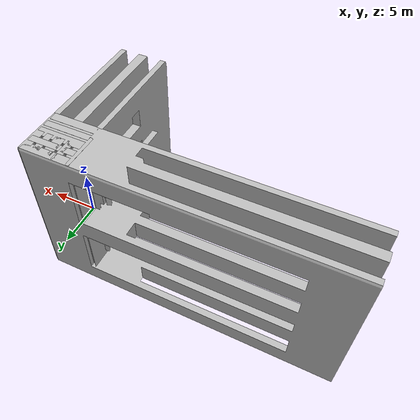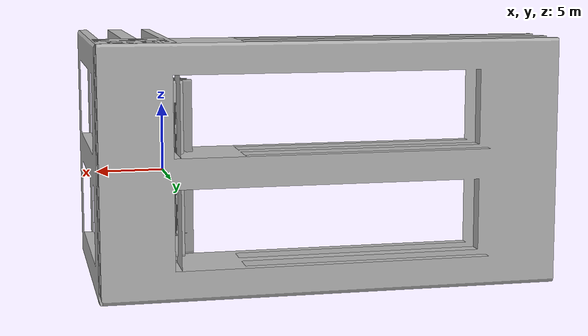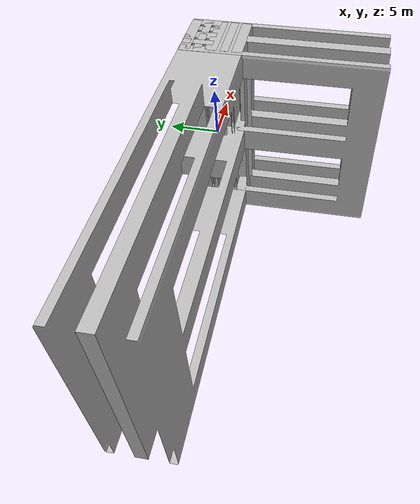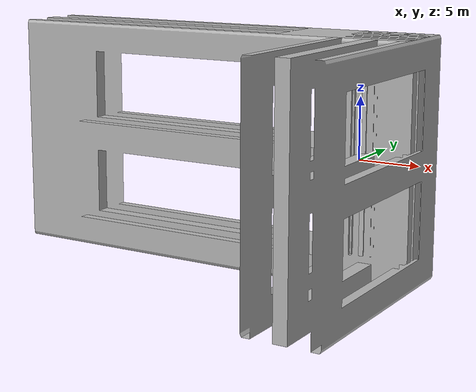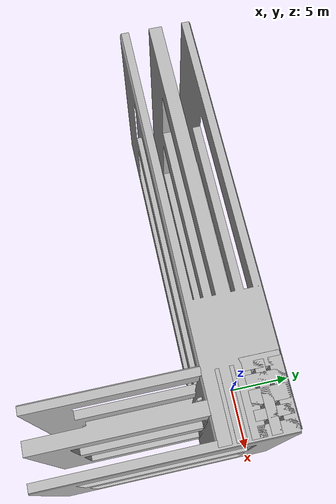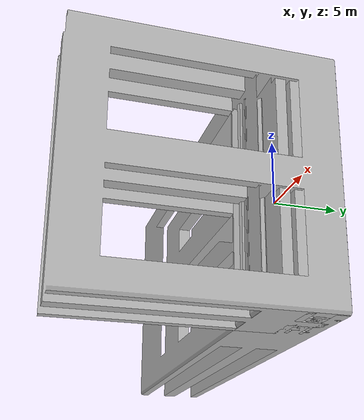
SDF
<sdf version='1.4'>
	<model name='2pallets+stepping_blocks'>
		<static>1</static>
		<link name='pallet_1'>
			<pose>-0.5 0 0.072 0 0 -1.5708</pose>
			<collision name='collision'>
				<geometry>
					<mesh>
						<uri>model://pallet_benchmark/mesh/pallet.dae</uri>
						<scale>0.787 24.75 1.6197</scale>
					</mesh>
				</geometry>
				<surface>
					<bounce>
						<restitution_coefficient>0.01</restitution_coefficient>
						<threshold>5</threshold>
					</bounce>
					<friction>
						<ode>
							<mu>10</mu>
							<mu2>10</mu2>
						</ode>
					</friction>
					<contact>
						<ode>
							<soft_cfm>0.001</soft_cfm>
							<kp>100000</kp>
							<kd>1000</kd>
						</ode>
					</contact>
				</surface>
				<max_contacts>10</max_contacts>
			</collision>
			<visual name='visual'>
				<geometry>
					<mesh>
						<uri>model://pallet_benchmark/mesh/pallet.dae</uri>
						<scale>0.787 24.75 1.6197</scale>
					</mesh>
				</geometry>
			</visual>
		</link>
		<link name='pallet_2'>
			<pose>2.1 0 0.072 0 -0 0</pose>
			<collision name='collision'>
				<geometry>
					<mesh>
						<uri>model://pallet_benchmark/mesh/pallet.dae</uri>
						<scale>0.787 13.50 1.6197</scale>
					</mesh>
				</geometry>
				<surface>
					<bounce>
						<restitution_coefficient>0.01</restitution_coefficient>
						<threshold>5</threshold>
					</bounce>
					<friction>
						<ode>
							<mu>10</mu>
							<mu2>10</mu2>
						</ode>
					</friction>
					<contact>
						<ode>
							<soft_cfm>0.001</soft_cfm>
							<kp>100000</kp>
							<kd>1000</kd>
						</ode>
					</contact>
				</surface>
				<max_contacts>10</max_contacts>
			</collision>
			<visual name='visual'>
				<geometry>
					<mesh>
						<uri>model://pallet_benchmark/mesh/pallet.dae</uri>
						<scale>0.787 13.50 1.6197</scale>
					</mesh>
				</geometry>
			</visual>
		</link>
		<link name='block_1'>
			<pose>0.785 -0.275 0.05 0 0 -1.2</pose>
			<collision name='collision'>
				<geometry>
					<mesh>
						<uri>model://blockwood_benchmark/mesh/pallet.dae</uri>
						<scale>0.246 2.46 1.1249</scale>
					</mesh>
				</geometry>
				<surface>
					<bounce>
						<restitution_coefficient>0.01</restitution_coefficient>
						<threshold>5</threshold>
					</bounce>
					<friction>
						<ode>
							<mu>10</mu>
							<mu2>10</mu2>
						</ode>
					</friction>
					<contact>
						<ode>
							<soft_cfm>0.001</soft_cfm>
							<kp>100000</kp>
							<kd>1000</kd>
						</ode>
					</contact>
				</surface>
				<max_contacts>10</max_contacts>
			</collision>
			<visual name='visual'>
				<geometry>
					<mesh>
						<uri>model://blockwood_benchmark/mesh/pallet.dae</uri>
						<scale>0.246 2.46 1.1249</scale>
					</mesh>
				</geometry>
			</visual>
		</link>
		<link name='block_2'>
			<pose>1.085 0.145 0.05 0 0 0.2</pose>
			<collision name='collision'>
				<geometry>
					<mesh>
						<uri>model://blockwood_benchmark/mesh/pallet.dae</uri>
						<scale>0.246 2.46 1.1249</scale>
					</mesh>
				</geometry>
				<surface>
					<bounce>
						<restitution_coefficient>0.01</restitution_coefficient>
						<threshold>5</threshold>
					</bounce>
					<friction>
						<ode>
							<mu>10</mu>
							<mu2>10</mu2>
						</ode>
					</friction>
					<contact>
						<ode>
							<soft_cfm>0.001</soft_cfm>
							<kp>100000</kp>
							<kd>1000</kd>
						</ode>
					</contact>
				</surface>
				<max_contacts>10</max_contacts>
			</collision>
			<visual name='visual'>
				<geometry>
					<mesh>
						<uri>model://blockwood_benchmark/mesh/pallet.dae</uri>
						<scale>0.246 2.46 1.1249</scale>
					</mesh>
				</geometry>
			</visual>
		</link>
		<link name='block_3'>
			<pose>1.25 -0.405 0.05 0 0 0.2</pose>
			<collision name='collision'>
				<geometry>
					<mesh>
						<uri>model://blockwood_benchmark/mesh/pallet.dae</uri>
						<scale>0.246 2.46 1.1249</scale>
					</mesh>
				</geometry>
				<surface>
					<bounce>
						<restitution_coefficient>0.01</restitution_coefficient>
						<threshold>5</threshold>
					</bounce>
					<friction>
						<ode>
							<mu>10</mu>
							<mu2>10</mu2>
						</ode>
					</friction>
					<contact>
						<ode>
							<soft_cfm>0.001</soft_cfm>
							<kp>100000</kp>
							<kd>1000</kd>
						</ode>
					</contact>
				</surface>
				<max_contacts>10</max_contacts>
			</collision>
			<visual name='visual'>
				<geometry>
					<mesh>
						<uri>model://blockwood_benchmark/mesh/pallet.dae</uri>
						<scale>0.246 2.46 1.1249</scale>
					</mesh>
				</geometry>
			</visual>
		</link>
		<link name='block_4'>
			<pose>1.455 -0.325 0.05 0 0 -1.5708</pose>
			<collision name='collision'>
				<geometry>
					<mesh>
						<uri>model://blockwood_benchmark/mesh/pallet.dae</uri>
						<scale>0.246 2.46 0.787</scale>
					</mesh>
				</geometry>
				<surface>
					<bounce>
						<restitution_coefficient>0.01</restitution_coefficient>
						<threshold>5</threshold>
					</bounce>
					<friction>
						<ode>
							<mu>10</mu>
							<mu2>10</mu2>
						</ode>
					</friction>
					<contact>
						<ode>
							<soft_cfm>0.001</soft_cfm>
							<kp>100000</kp>
							<kd>1000</kd>
						</ode>
					</contact>
				</surface>
				<max_contacts>10</max_contacts>
			</collision>
			<visual name='visual'>
				<geometry>
					<mesh>
						<uri>model://blockwood_benchmark/mesh/pallet.dae</uri>
						<scale>0.246 2.46 1.1249</scale>
					</mesh>
				</geometry>
			</visual>
		</link>
		<link name='block_5'>
			<pose>0.775 0.275 0.05 0 0 1</pose>
			<collision name='collision'>
				<geometry>
					<mesh>
						<uri>model://blockwood_benchmark/mesh/pallet.dae</uri>
						<scale>0.246 2.46 1.1249</scale>
					</mesh>
				</geometry>
				<surface>
					<bounce>
						<restitution_coefficient>0.01</restitution_coefficient>
						<threshold>5</threshold>
					</bounce>
					<friction>
						<ode>
							<mu>10</mu>
							<mu2>10</mu2>
						</ode>
					</friction>
					<contact>
						<ode>
							<soft_cfm>0.001</soft_cfm>
							<kp>100000</kp>
							<kd>1000</kd>
						</ode>
					</contact>
				</surface>
				<max_contacts>10</max_contacts>
			</collision>
			<visual name='visual'>
				<geometry>
					<mesh>
						<uri>model://blockwood_benchmark/mesh/pallet.dae</uri>
						<scale>0.246 2.46 1.1249</scale>
					</mesh>
				</geometry>
			</visual>
		</link>
		<link name='block_6'>
			<pose>1.37 0.37 0.05 0 0 0.57</pose>
			<collision name='collision'>
				<geometry>
					<mesh>
						<uri>model://blockwood_benchmark/mesh/pallet.dae</uri>
						<scale>0.246 2.46 1.1249</scale>
					</mesh>
				</geometry>
				<surface>
					<bounce>
						<restitution_coefficient>0.01</restitution_coefficient>
						<threshold>5</threshold>
					</bounce>
					<friction>
						<ode>
							<mu>10</mu>
							<mu2>10</mu2>
						</ode>
					</friction>
					<contact>
						<ode>
							<soft_cfm>0.001</soft_cfm>
							<kp>100000</kp>
							<kd>1000</kd>
						</ode>
					</contact>
				</surface>
				<max_contacts>10</max_contacts>
			</collision>
			<visual name='visual'>
				<geometry>
					<mesh>
						<uri>model://blockwood_benchmark/mesh/pallet.dae</uri>
						<scale>0.246 2.46 1.1249</scale>
					</mesh>
				</geometry>
			</visual>
		</link>
		<link name='block_7'>
			<pose>1.545 0.17 0.05 0 0 2</pose>
			<collision name='collision'>
				<geometry>
					<mesh>
						<uri>model://blockwood_benchmark/mesh/pallet.dae</uri>
						<scale>0.246 2.46 1.1249</scale>
					</mesh>
				</geometry>
				<surface>
					<bounce>
						<restitution_coefficient>0.01</restitution_coefficient>
						<threshold>5</threshold>
					</bounce>
					<friction>
						<ode>
							<mu>10</mu>
							<mu2>10</mu2>
						</ode>
					</friction>
					<contact>
						<ode>
							<soft_cfm>0.001</soft_cfm>
							<kp>100000</kp>
							<kd>1000</kd>
						</ode>
					</contact>
				</surface>
				<max_contacts>10</max_contacts>
			</collision>
		<visual name='visual'>
			<geometry>
				<mesh>
					<uri>model://blockwood_benchmark/mesh/pallet.dae</uri>
					<scale>0.246 2.46 1.1249</scale>
				</mesh>
			</geometry>
		</visual>
	</link>
	<link name='block_8'>
		<pose>1.085 0.35 0.05 0 0 2</pose>
		<collision name='collision'>
			<geometry>
				<mesh>
					<uri>model://blockwood_benchmark/mesh/pallet.dae</uri>
					<scale>0.246 2.46 1.1249</scale>
				</mesh>
			</geometry>
			<surface>
				<bounce>
					<restitution_coefficient>0.01</restitution_coefficient>
					<threshold>5</threshold>
				</bounce>
				<friction>
					<ode>
						<mu>10</mu>
						<mu2>10</mu2>
					</ode>
				</friction>
				<contact>
					<ode>
						<soft_cfm>0.001</soft_cfm>
						<kp>100000</kp>
						<kd>1000</kd>
					</ode>
				</contact>
			</surface>
			<max_contacts>10</max_contacts>
		</collision>
		<visual name='visual'>
			<geometry>
				<mesh>
					<uri>model://blockwood_benchmark/mesh/pallet.dae</uri>
					<scale>0.246 2.46 1.1249</scale>
				</mesh>
			</geometry>
		</visual>
	</link>
	<link name='block_9'>
		<pose>1.055 -0.13 0.05 0 0 1.4</pose>
		<collision name='collision'>
			<geometry>
				<mesh>
					<uri>model://blockwood_benchmark/mesh/pallet.dae</uri>
					<scale>0.246 2.46 1.1249</scale>
				</mesh>
			</geometry>
			<surface>
				<bounce>
					<restitution_coefficient>0.01</restitution_coefficient>
					<threshold>5</threshold>
				</bounce>
				<friction>
					<ode>
						<mu>10</mu>
						<mu2>10</mu2>
					</ode>
				</friction>
				<contact>
					<ode>
						<soft_cfm>0.001</soft_cfm>
						<kp>100000</kp>
						<kd>1000</kd>
					</ode>
				</contact>
			</surface>
			<max_contacts>10</max_contacts>
		</collision>
		<visual name='visual'>
			<geometry>
				<mesh>
					<uri>model://blockwood_benchmark/mesh/pallet.dae</uri>
					<scale>0.246 2.46 1.1249</scale>
				</mesh>
			</geometry>
		</visual>
	</link>
</model>
</sdf>
